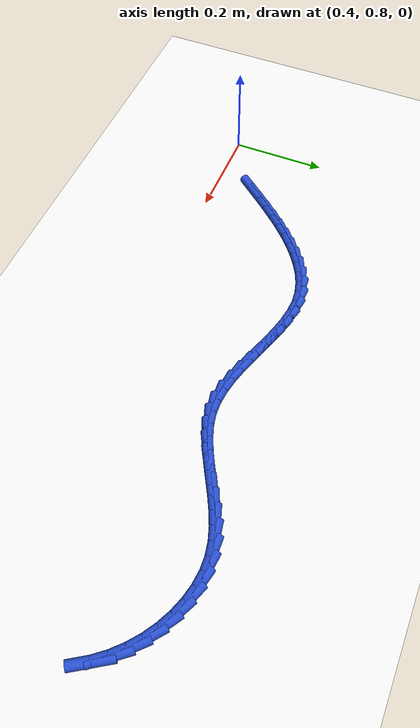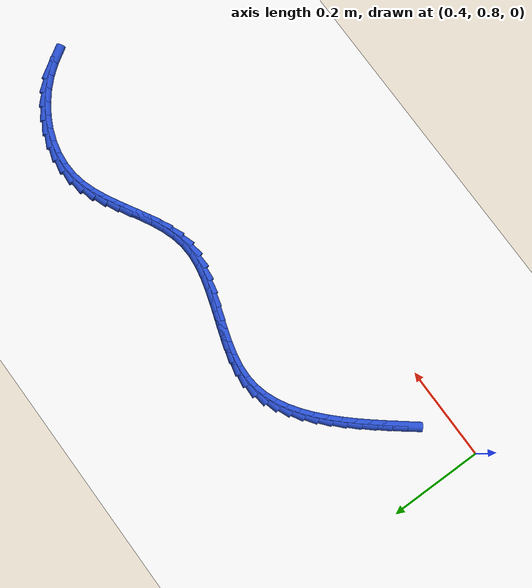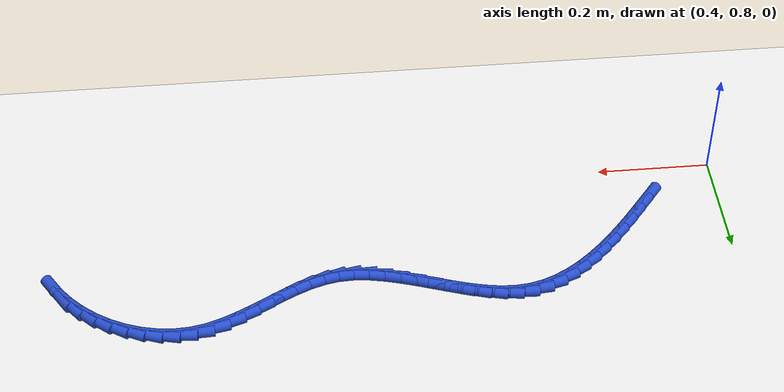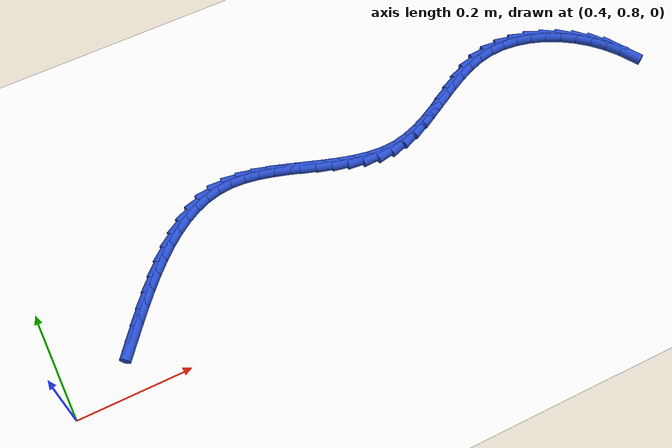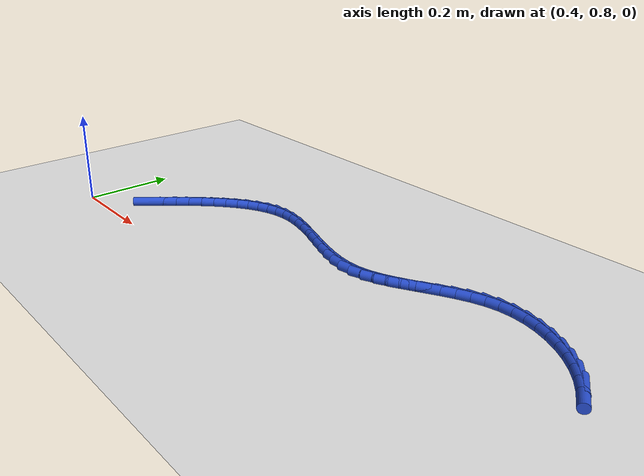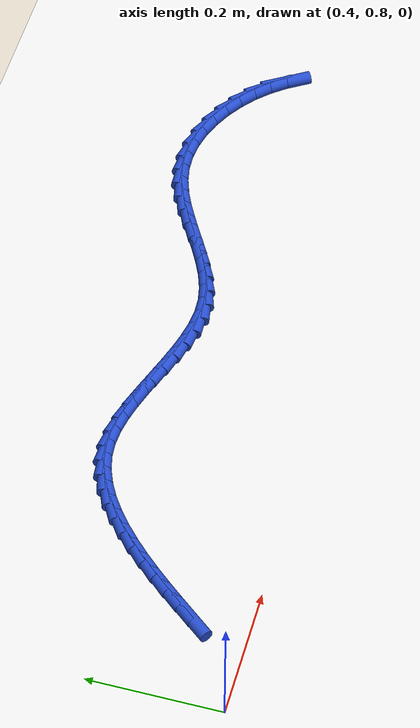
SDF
<sdf version="1.6">
 <world name="default">
  <model name="ground_plane">
   <static>1</static>
   <link name="link">
    <collision name="collision">
     <geometry><plane><normal>0 0 1</normal><size>100 100</size></plane></geometry>
     <surface><friction><ode><mu>100</mu><mu2>50</mu2></ode></friction></surface>
    </collision>
    <visual name="visual">
     <cast_shadows>0</cast_shadows>
     <geometry><plane><normal>0 0 1</normal><size>100 100</size></plane></geometry>
     <material>
      <script><uri>file://media/materials/scripts/gazebo.material</uri><name>Gazebo/WhiteGlow</name></script>
     </material>
    </visual>
   </link>
  </model>
  <model name="line">
   <link name="link_39">
    <pose>0.5307695481734757 0.886206373588862 0.01 0 1.57 0.8946504027893772</pose>
    <collision name="collision">
     <geometry><cylinder><radius>0.01</radius><length>0.08</length></cylinder></geometry>
    </collision>
    <visual name="visual">
     <material>
      <script><name>Gazebo/Blue</name><uri>file://media/materials/scripts/gazebo.material</uri></script>
     </material>
     <geometry><cylinder><radius>0.01</radius><length>0.08</length></cylinder></geometry>
    </visual>
   </link>
   <link name="link_40">
    <pose>0.5493019269409729 0.9093052424873804 0.01 0 1.57 0.8820267981212863</pose>
    <collision name="collision">
     <geometry><cylinder><radius>0.01</radius><length>0.08</length></cylinder></geometry>
    </collision>
    <visual name="visual">
     <material>
      <script><name>Gazebo/Blue</name><uri>file://media/materials/scripts/gazebo.material</uri></script>
     </material>
     <geometry><cylinder><radius>0.01</radius><length>0.08</length></cylinder></geometry>
    </visual>
   </link>
   <link name="link_41">
    <pose>0.5683317543818567 0.9324201836643005 0.01 0 1.57 0.8610606553677093</pose>
    <collision name="collision">
     <geometry><cylinder><radius>0.01</radius><length>0.08</length></cylinder></geometry>
    </collision>
    <visual name="visual">
     <material>
      <script><name>Gazebo/Blue</name><uri>file://media/materials/scripts/gazebo.material</uri></script>
     </material>
     <geometry><cylinder><radius>0.01</radius><length>0.08</length></cylinder></geometry>
    </visual>
   </link>
   <link name="link_42">
    <pose>0.5878777768841583 0.9551727435992726 0.01 0 1.57 0.8312353115284545</pose>
    <collision name="collision">
     <geometry><cylinder><radius>0.01</radius><length>0.08</length></cylinder></geometry>
    </collision>
    <visual name="visual">
     <material>
      <script><name>Gazebo/Blue</name><uri>file://media/materials/scripts/gazebo.material</uri></script>
     </material>
     <geometry><cylinder><radius>0.01</radius><length>0.08</length></cylinder></geometry>
    </visual>
   </link>
   <link name="link_43">
    <pose>0.6079587408359077 0.9771844687719466 0.01 0 1.57 0.7916057208700408</pose>
    <collision name="collision">
     <geometry><cylinder><radius>0.01</radius><length>0.08</length></cylinder></geometry>
    </collision>
    <visual name="visual">
     <material>
      <script><name>Gazebo/Blue</name><uri>file://media/materials/scripts/gazebo.material</uri></script>
     </material>
     <geometry><cylinder><radius>0.01</radius><length>0.08</length></cylinder></geometry>
    </visual>
   </link>
   <link name="link_44">
    <pose>0.6285933926251355 0.9980769056619727 0.01 0 1.57 0.7407895638793492</pose>
    <collision name="collision">
     <geometry><cylinder><radius>0.01</radius><length>0.08</length></cylinder></geometry>
    </collision>
    <visual name="visual">
     <material>
      <script><name>Gazebo/Blue</name><uri>file://media/materials/scripts/gazebo.material</uri></script>
     </material>
     <geometry><cylinder><radius>0.01</radius><length>0.08</length></cylinder></geometry>
    </visual>
   </link>
   <link name="link_45">
    <pose>0.6498004786398724 1.0174716007490014 0.01 0 1.57 0.6769715897637685</pose>
    <collision name="collision">
     <geometry><cylinder><radius>0.01</radius><length>0.08</length></cylinder></geometry>
    </collision>
    <visual name="visual">
     <material>
      <script><name>Gazebo/Blue</name><uri>file://media/materials/scripts/gazebo.material</uri></script>
     </material>
     <geometry><cylinder><radius>0.01</radius><length>0.08</length></cylinder></geometry>
    </visual>
   </link>
   <link name="link_46">
    <pose>0.6715987452681489 1.0349901005126823 0.01 0 1.57 0.5979781573252401</pose>
    <collision name="collision">
     <geometry><cylinder><radius>0.01</radius><length>0.08</length></cylinder></geometry>
    </collision>
    <visual name="visual">
     <material>
      <script><name>Gazebo/Blue</name><uri>file://media/materials/scripts/gazebo.material</uri></script>
     </material>
     <geometry><cylinder><radius>0.01</radius><length>0.08</length></cylinder></geometry>
    </visual>
   </link>
   <link name="link_47">
    <pose>0.6940069388979957 1.0502539514326656 0.01 0 1.57 0.50152488870363</pose>
    <collision name="collision">
     <geometry><cylinder><radius>0.01</radius><length>0.08</length></cylinder></geometry>
    </collision>
    <visual name="visual">
     <material>
      <script><name>Gazebo/Blue</name><uri>file://media/materials/scripts/gazebo.material</uri></script>
     </material>
     <geometry><cylinder><radius>0.01</radius><length>0.08</length></cylinder></geometry>
    </visual>
   </link>
   <link name="link_48">
    <pose>0.7170438059174431 1.0628846999886021 0.01 0 1.57 0.38579029363609757</pose>
    <collision name="collision">
     <geometry><cylinder><radius>0.01</radius><length>0.08</length></cylinder></geometry>
    </collision>
    <visual name="visual">
     <material>
      <script><name>Gazebo/Blue</name><uri>file://media/materials/scripts/gazebo.material</uri></script>
     </material>
     <geometry><cylinder><radius>0.01</radius><length>0.08</length></cylinder></geometry>
    </visual>
   </link>
   <link name="link_49">
    <pose>0.7407280927145217 1.0725038926601407 0.01 0 1.57 0.2504429980740751</pose>
    <collision name="collision">
     <geometry><cylinder><radius>0.01</radius><length>0.08</length></cylinder></geometry>
    </collision>
    <visual name="visual">
     <material>
      <script><name>Gazebo/Blue</name><uri>file://media/materials/scripts/gazebo.material</uri></script>
     </material>
     <geometry><cylinder><radius>0.01</radius><length>0.08</length></cylinder></geometry>
    </visual>
   </link>
   <link name="link_50">
    <pose>0.765078545677262 1.078733075926932 0.01 0 1.57 0.09814398672746759</pose>
    <collision name="collision">
     <geometry><cylinder><radius>0.01</radius><length>0.08</length></cylinder></geometry>
    </collision>
    <visual name="visual">
     <material>
      <script><name>Gazebo/Blue</name><uri>file://media/materials/scripts/gazebo.material</uri></script>
     </material>
     <geometry><cylinder><radius>0.01</radius><length>0.08</length></cylinder></geometry>
    </visual>
   </link>
   <link name="link_51">
    <pose>0.7901134105706822 1.0811980167639141 0.01 0 1.57 -0.050436674000525275</pose>
    <collision name="collision">
     <geometry><cylinder><radius>0.01</radius><length>0.08</length></cylinder></geometry>
    </collision>
    <visual name="visual">
     <material>
      <script><name>Gazebo/Blue</name><uri>file://media/materials/scripts/gazebo.material</uri></script>
     </material>
     <geometry><cylinder><radius>0.01</radius><length>0.08</length></cylinder></geometry>
    </visual>
   </link>
   <link name="link_52">
    <pose>0.8158062652087489 1.0799010546813437 0.01 0 1.57 -0.16566280958489482</pose>
    <collision name="collision">
     <geometry><cylinder><radius>0.01</radius><length>0.08</length></cylinder></geometry>
    </collision>
    <visual name="visual">
     <material>
      <script><name>Gazebo/Blue</name><uri>file://media/materials/scripts/gazebo.material</uri></script>
     </material>
     <geometry><cylinder><radius>0.01</radius><length>0.08</length></cylinder></geometry>
    </visual>
   </link>
   <link name="link_53">
    <pose>0.8420513957010565 1.0755129967918837 0.01 0 1.57 -0.24740260322809296</pose>
    <collision name="collision">
     <geometry><cylinder><radius>0.01</radius><length>0.08</length></cylinder></geometry>
    </collision>
    <visual name="visual">
     <material>
      <script><name>Gazebo/Blue</name><uri>file://media/materials/scripts/gazebo.material</uri></script>
     </material>
     <geometry><cylinder><radius>0.01</radius><length>0.08</length></cylinder></geometry>
    </visual>
   </link>
   <link name="link_54">
    <pose>0.8687349395097339 1.0687733472664722 0.01 0 1.57 -0.29990383422102085</pose>
    <collision name="collision">
     <geometry><cylinder><radius>0.01</radius><length>0.08</length></cylinder></geometry>
    </collision>
    <visual name="visual">
     <material>
      <script><name>Gazebo/Blue</name><uri>file://media/materials/scripts/gazebo.material</uri></script>
     </material>
     <geometry><cylinder><radius>0.01</radius><length>0.08</length></cylinder></geometry>
    </visual>
   </link>
   <link name="link_55">
    <pose>0.8957430340969084 1.0604216102760462 0.01 0 1.57 -0.3267480335180344</pose>
    <collision name="collision">
     <geometry><cylinder><radius>0.01</radius><length>0.08</length></cylinder></geometry>
    </collision>
    <visual name="visual">
     <material>
      <script><name>Gazebo/Blue</name><uri>file://media/materials/scripts/gazebo.material</uri></script>
     </material>
     <geometry><cylinder><radius>0.01</radius><length>0.08</length></cylinder></geometry>
    </visual>
   </link>
   <link name="link_56">
    <pose>0.9229618169247074 1.051197289991542 0.01 0 1.57 -0.3300368344223274</pose>
    <collision name="collision">
     <geometry><cylinder><radius>0.01</radius><length>0.08</length></cylinder></geometry>
    </collision>
    <visual name="visual">
     <material>
      <script><name>Gazebo/Blue</name><uri>file://media/materials/scripts/gazebo.material</uri></script>
     </material>
     <geometry><cylinder><radius>0.01</radius><length>0.08</length></cylinder></geometry>
    </visual>
   </link>
   <link name="link_57">
    <pose>0.9502774254552588 1.0418398905838975 0.01 0 1.57 -0.31021563518638295</pose>
    <collision name="collision">
     <geometry><cylinder><radius>0.01</radius><length>0.08</length></cylinder></geometry>
    </collision>
    <visual name="visual">
     <material>
      <script><name>Gazebo/Blue</name><uri>file://media/materials/scripts/gazebo.material</uri></script>
     </material>
     <geometry><cylinder><radius>0.01</radius><length>0.08</length></cylinder></geometry>
    </visual>
   </link>
   <link name="link_58">
    <pose>0.9775759971506903 1.033088916224049 0.01 0 1.57 -0.2661040379252089</pose>
    <collision name="collision">
     <geometry><cylinder><radius>0.01</radius><length>0.08</length></cylinder></geometry>
    </collision>
    <visual name="visual">
     <material>
      <script><name>Gazebo/Blue</name><uri>file://media/materials/scripts/gazebo.material</uri></script>
     </material>
     <geometry><cylinder><radius>0.01</radius><length>0.08</length></cylinder></geometry>
    </visual>
   </link>
   <link name="link_59">
    <pose>1.0047436694731298 1.0256838710829341 0.01 0 1.57 -0.1950741033738589</pose>
    <collision name="collision">
     <geometry><cylinder><radius>0.01</radius><length>0.08</length></cylinder></geometry>
    </collision>
    <visual name="visual">
     <material>
      <script><name>Gazebo/Blue</name><uri>file://media/materials/scripts/gazebo.material</uri></script>
     </material>
     <geometry><cylinder><radius>0.01</radius><length>0.08</length></cylinder></geometry>
    </visual>
   </link>
   <link name="link_60">
    <pose>1.0316665798847044 1.0203642593314894 0.01 0 1.57 -0.09363620932525915</pose>
    <collision name="collision">
     <geometry><cylinder><radius>0.01</radius><length>0.08</length></cylinder></geometry>
    </collision>
    <visual name="visual">
     <material>
      <script><name>Gazebo/Blue</name><uri>file://media/materials/scripts/gazebo.material</uri></script>
     </material>
     <geometry><cylinder><radius>0.01</radius><length>0.08</length></cylinder></geometry>
    </visual>
   </link>
   <link name="link_61">
    <pose>1.0582308658475426 1.0178695851406523 0.01 0 1.57 0.04097719420939117</pose>
    <collision name="collision">
     <geometry><cylinder><radius>0.01</radius><length>0.08</length></cylinder></geometry>
    </collision>
    <visual name="visual">
     <material>
      <script><name>Gazebo/Blue</name><uri>file://media/materials/scripts/gazebo.material</uri></script>
     </material>
     <geometry><cylinder><radius>0.01</radius><length>0.08</length></cylinder></geometry>
    </visual>
   </link>
   <link name="link_62">
    <pose>1.0843226648237716 1.0189393526813597 0.01 0 1.57 0.1984329592036578</pose>
    <collision name="collision">
     <geometry><cylinder><radius>0.01</radius><length>0.08</length></cylinder></geometry>
    </collision>
    <visual name="visual">
     <material>
      <script><name>Gazebo/Blue</name><uri>file://media/materials/scripts/gazebo.material</uri></script>
     </material>
     <geometry><cylinder><radius>0.01</radius><length>0.08</length></cylinder></geometry>
    </visual>
   </link>
   <link name="link_63">
    <pose>1.1098654176466873 1.0240754669314238 0.01 0 1.57 0.33150224684745844</pose>
    <collision name="collision">
     <geometry><cylinder><radius>0.01</radius><length>0.08</length></cylinder></geometry>
    </collision>
    <visual name="visual">
     <material>
      <script><name>Gazebo/Blue</name><uri>file://media/materials/scripts/gazebo.material</uri></script>
     </material>
     <geometry><cylinder><radius>0.01</radius><length>0.08</length></cylinder></geometry>
    </visual>
   </link>
   <link name="link_64">
    <pose>1.134950549799917 1.0327098754860877 0.01 0 1.57 0.4268362712069189</pose>
    <collision name="collision">
     <geometry><cylinder><radius>0.01</radius><length>0.08</length></cylinder></geometry>
    </collision>
    <visual name="visual">
     <material>
      <script><name>Gazebo/Blue</name><uri>file://media/materials/scripts/gazebo.material</uri></script>
     </material>
     <geometry><cylinder><radius>0.01</radius><length>0.08</length></cylinder></geometry>
    </visual>
   </link>
   <link name="link_65">
    <pose>1.1597167514485007 1.0439734794181117 0.01 0 1.57 0.4871401837356576</pose>
    <collision name="collision">
     <geometry><cylinder><radius>0.01</radius><length>0.08</length></cylinder></geometry>
    </collision>
    <visual name="visual">
     <material>
      <script><name>Gazebo/Blue</name><uri>file://media/materials/scripts/gazebo.material</uri></script>
     </material>
     <geometry><cylinder><radius>0.01</radius><length>0.08</length></cylinder></geometry>
    </visual>
   </link>
   <link name="link_66">
    <pose>1.1843027153442718 1.0569971633239978 0.01 0 1.57 0.5157384786911845</pose>
    <collision name="collision">
     <geometry><cylinder><radius>0.01</radius><length>0.08</length></cylinder></geometry>
    </collision>
    <visual name="visual">
     <material>
      <script><name>Gazebo/Blue</name><uri>file://media/materials/scripts/gazebo.material</uri></script>
     </material>
     <geometry><cylinder><radius>0.01</radius><length>0.08</length></cylinder></geometry>
    </visual>
   </link>
   <link name="link_67">
    <pose>1.208847134239064 1.0709118118002479 0.01 0 1.57 0.5147174867114765</pose>
    <collision name="collision">
     <geometry><cylinder><radius>0.01</radius><length>0.08</length></cylinder></geometry>
    </collision>
    <visual name="visual">
     <material>
      <script><name>Gazebo/Blue</name><uri>file://media/materials/scripts/gazebo.material</uri></script>
     </material>
     <geometry><cylinder><radius>0.01</radius><length>0.08</length></cylinder></geometry>
    </visual>
   </link>
   <link name="link_68">
    <pose>1.2334887008847106 1.0848483094433634 0.01 0 1.57 0.4843475785132026</pose>
    <collision name="collision">
     <geometry><cylinder><radius>0.01</radius><length>0.08</length></cylinder></geometry>
    </collision>
    <visual name="visual">
     <material>
      <script><name>Gazebo/Blue</name><uri>file://media/materials/scripts/gazebo.material</uri></script>
     </material>
     <geometry><cylinder><radius>0.01</radius><length>0.08</length></cylinder></geometry>
    </visual>
   </link>
   <link name="link_69">
    <pose>1.2583661080330448 1.0979375408498468 0.01 0 1.57 0.4231659666748761</pose>
    <collision name="collision">
     <geometry><cylinder><radius>0.01</radius><length>0.08</length></cylinder></geometry>
    </collision>
    <visual name="visual">
     <material>
      <script><name>Gazebo/Blue</name><uri>file://media/materials/scripts/gazebo.material</uri></script>
     </material>
     <geometry><cylinder><radius>0.01</radius><length>0.08</length></cylinder></geometry>
    </visual>
   </link>
   <link name="link_70">
    <pose>1.2836180484359003 1.1093103906161996 0.01 0 1.57 0.3286843650183398</pose>
    <collision name="collision">
     <geometry><cylinder><radius>0.01</radius><length>0.08</length></cylinder></geometry>
    </collision>
    <visual name="visual">
     <material>
      <script><name>Gazebo/Blue</name><uri>file://media/materials/scripts/gazebo.material</uri></script>
     </material>
     <geometry><cylinder><radius>0.01</radius><length>0.08</length></cylinder></geometry>
    </visual>
   </link>
   <link name="link_71">
    <pose>1.30938321484511 1.118097743338924 0.01 0 1.57 0.19921634138528094</pose>
    <collision name="collision">
     <geometry><cylinder><radius>0.01</radius><length>0.08</length></cylinder></geometry>
    </collision>
    <visual name="visual">
     <material>
      <script><name>Gazebo/Blue</name><uri>file://media/materials/scripts/gazebo.material</uri></script>
     </material>
     <geometry><cylinder><radius>0.01</radius><length>0.08</length></cylinder></geometry>
    </visual>
   </link>
   <link name="link_72">
    <pose>1.3357999826235663 1.1234311383023252 0.01 0 1.57 0.047751538414381955</pose>
    <collision name="collision">
     <geometry><cylinder><radius>0.01</radius><length>0.08</length></cylinder></geometry>
    </collision>
    <visual name="visual">
     <material>
      <script><name>Gazebo/Blue</name><uri>file://media/materials/scripts/gazebo.material</uri></script>
     </material>
     <geometry><cylinder><radius>0.01</radius><length>0.08</length></cylinder></geometry>
    </visual>
   </link>
   <link name="link_73">
    <pose>1.3628697106554262 1.1247247428395535 0.01 0 1.57 -0.09504108315488577</pose>
    <collision name="collision">
     <geometry><cylinder><radius>0.01</radius><length>0.08</length></cylinder></geometry>
    </collision>
    <visual name="visual">
     <material>
      <script><name>Gazebo/Blue</name><uri>file://media/materials/scripts/gazebo.material</uri></script>
     </material>
     <geometry><cylinder><radius>0.01</radius><length>0.08</length></cylinder></geometry>
    </visual>
   </link>
   <link name="link_74">
    <pose>1.390243482332035 1.1221152481729153 0.01 0 1.57 -0.2256900427654994</pose>
    <collision name="collision">
     <geometry><cylinder><radius>0.01</radius><length>0.08</length></cylinder></geometry>
    </collision>
    <visual name="visual">
     <material>
      <script><name>Gazebo/Blue</name><uri>file://media/materials/scripts/gazebo.material</uri></script>
     </material>
     <geometry><cylinder><radius>0.01</radius><length>0.08</length></cylinder></geometry>
    </visual>
   </link>
   <link name="link_75">
    <pose>1.4175172066695514 1.1158531553828415 0.01 0 1.57 -0.3464527717210173</pose>
    <collision name="collision">
     <geometry><cylinder><radius>0.01</radius><length>0.08</length></cylinder></geometry>
    </collision>
    <visual name="visual">
     <material>
      <script><name>Gazebo/Blue</name><uri>file://media/materials/scripts/gazebo.material</uri></script>
     </material>
     <geometry><cylinder><radius>0.01</radius><length>0.08</length></cylinder></geometry>
    </visual>
   </link>
   <link name="link_76">
    <pose>1.444286792684133 1.1061889655497599 0.01 0 1.57 -0.46008718927721826</pose>
    <collision name="collision">
     <geometry><cylinder><radius>0.01</radius><length>0.08</length></cylinder></geometry>
    </collision>
    <visual name="visual">
     <material>
      <script><name>Gazebo/Blue</name><uri>file://media/materials/scripts/gazebo.material</uri></script>
     </material>
     <geometry><cylinder><radius>0.01</radius><length>0.08</length></cylinder></geometry>
    </visual>
   </link>
   <link name="link_77">
    <pose>1.4701481493919395 1.0933731797541002 0.01 0 1.57 -0.5694720386552321</pose>
    <collision name="collision">
     <geometry><cylinder><radius>0.01</radius><length>0.08</length></cylinder></geometry>
    </collision>
    <visual name="visual">
     <material>
      <script><name>Gazebo/Blue</name><uri>file://media/materials/scripts/gazebo.material</uri></script>
     </material>
     <geometry><cylinder><radius>0.01</radius><length>0.08</length></cylinder></geometry>
    </visual>
   </link>
   <link name="link_78">
    <pose>1.494697185809129 1.0776562990762917 0.01 0 1.57 -0.6774423355280579</pose>
    <collision name="collision">
     <geometry><cylinder><radius>0.01</radius><length>0.08</length></cylinder></geometry>
    </collision>
    <visual name="visual">
     <material>
      <script><name>Gazebo/Blue</name><uri>file://media/materials/scripts/gazebo.material</uri></script>
     </material>
     <geometry><cylinder><radius>0.01</radius><length>0.08</length></cylinder></geometry>
    </visual>
   </link>
   <link name="link_79">
    <pose>1.5175298109518607 1.0592888245967635 0.01 0 1.57 -0.7867348243814783</pose>
    <collision name="collision">
     <geometry><cylinder><radius>0.01</radius><length>0.08</length></cylinder></geometry>
    </collision>
    <visual name="visual">
     <material>
      <script><name>Gazebo/Blue</name><uri>file://media/materials/scripts/gazebo.material</uri></script>
     </material>
     <geometry><cylinder><radius>0.01</radius><length>0.08</length></cylinder></geometry>
    </visual>
   </link>
   <link name="link_80">
    <pose>1.5382419338362927 1.0385212573959448 0.01 0 1.57 -0.8998128693476669</pose>
    <collision name="collision">
     <geometry><cylinder><radius>0.01</radius><length>0.08</length></cylinder></geometry>
    </collision>
    <visual name="visual">
     <material>
      <script><name>Gazebo/Blue</name><uri>file://media/materials/scripts/gazebo.material</uri></script>
     </material>
     <geometry><cylinder><radius>0.01</radius><length>0.08</length></cylinder></geometry>
    </visual>
   </link>
   <link name="link_81">
    <pose>1.5564337924032048 1.015605445459331 0.01 0 1.57 -1.0069072057847432</pose>
    <collision name="collision">
     <geometry><cylinder><radius>0.01</radius><length>0.08</length></cylinder></geometry>
    </collision>
    <visual name="visual">
     <material>
      <script><name>Gazebo/Blue</name><uri>file://media/materials/scripts/gazebo.material</uri></script>
     </material>
     <geometry><cylinder><radius>0.01</radius><length>0.08</length></cylinder></geometry>
    </visual>
   </link>
  </model>
 </world>
</sdf>
